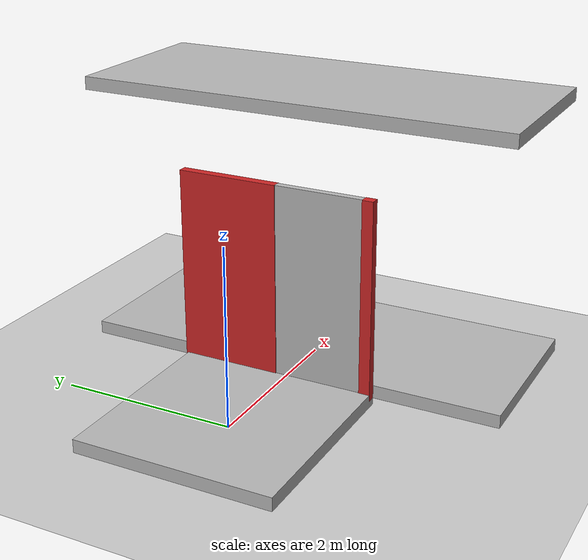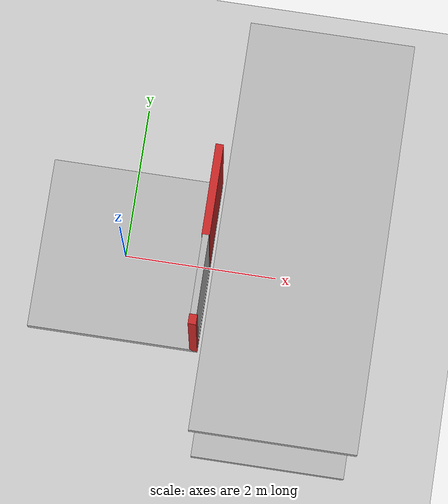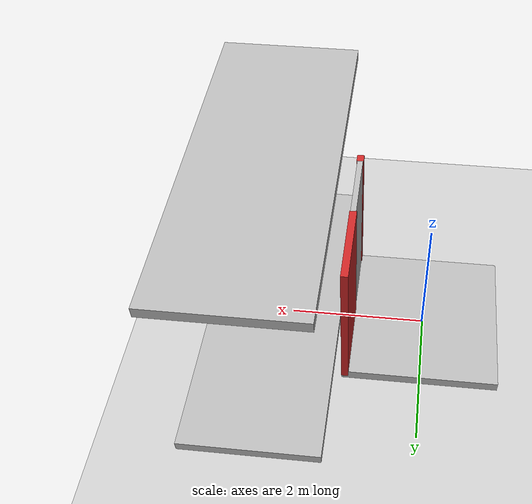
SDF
<?xml version="1.0" ?>
<sdf version="1.5">
  <world name="default">

    <!-- A global light source -->
    <include>
      <uri>model://sun</uri>
    </include>

    <!-- A ground plane -->
    <include>
      <uri>model://ground_plane</uri>
    </include>

    <include>
      <uri>model://example</uri>
    </include>
    <!-- World plugin that publishes event messages.
         The topics used in these messages match up with topics used by the
         plugin in the elevator model below.
    -->
    <plugin filename="libSimEventsPlugin.so" name="elevator_event_plugin">

      <region>
        <name>region1</name>
        <volume>
          <min>1.5 -1 0</min>
          <max>2.5 1 1</max>
        </volume>
      </region>

      <region>
        <name>region2</name>
        <volume>
          <min>1.5 -1 3</min>
          <max>2.5 1 4</max>
        </volume>
      </region>

      <event>
        <name>region1_event</name>
        <type>occupied</type>
        <region>region1</region>
        <topic>/elevator</topic>
        <msg_data>0</msg_data>
      </event>

      <event>
        <name>region2_event</name>
        <type>occupied</type>
        <region>region2</region>
        <topic>/elevator</topic>
        <msg_data>1</msg_data>
      </event>
    </plugin>

    <!-- The elevator car -->
    <model name="elevator">
      <pose>0 0 0.075 0 0 0</pose>
      <link name="link">
        <inertial>
          <mass>800</mass>
        </inertial>

        <collision name="floor_collision">
          <geometry>
            <box>
              <size>2.25 2.25 0.15</size>
            </box>
          </geometry>
        </collision>
        <visual name="floor_visual">
          <geometry>
            <box>
              <size>2.25 2.25 0.15</size>
            </box>
          </geometry>
        </visual>

        <!-- 大墙wall1_collision is the wall to the right of the door, when
             facing the door -->
        <collision name="wall1_collision">
          <pose>1.0745 0.5725 1.125 0 0 0</pose>
          <geometry>
            <box>
              <size>0.1 1.15 2.25</size>
            </box>
          </geometry>
        </collision>
        <visual name="wall1_visual">
          <pose>1.0745 0.5725 1.125 0 0 0</pose>
          <geometry>
            <box>
              <size>0.1 1.15 2.25</size>
            </box>
          </geometry>
          <material>
            <script>
              <name>Gazebo/Red</name>
            </script>
          </material>
        </visual>

        <!-- 小墙 wall2_collision is the wall to the left of the door, when
             facing the door -->
        <collision name="wall2_collision">
          <pose>1.0745 -1.0625 1.125 0 0 0</pose>
          <geometry>
            <box>
              <size>0.1 0.125 2.25</size>
            </box>
          </geometry>
        </collision>
        <visual name="wall2_visual">
          <pose>1.0745 -1.0625 1.125 0 0 0</pose>
          <geometry>
            <box>
              <size>0.1 0.125 2.25</size>
            </box>
          </geometry>
          <material>
            <script>
              <name>Gazebo/Red</name>
            </script>
          </material>
        </visual>
      </link>

      <link name="door">
        <pose>1.0745 -0.5 1.125 0 0 0</pose>
        <collision name="collision">
          <geometry>
            <box>
              <size>0.08 1.0 2.25</size>
            </box>
          </geometry>
        </collision>
        <visual name="visual">
          <geometry>
            <box>
              <size>0.08 1.0 2.25</size>
            </box>
          </geometry>
        </visual>
      </link>

      <joint name="door_joint" type="prismatic">
        <parent>link</parent>
        <child>door</child>
        <axis>
          <xyz>0 1 0</xyz>
          <limit>
            <lower>0</lower>
            <upper>1.5</upper>
            <effort>30</effort>
          </limit>

          <dynamics>
            <damping>2</damping>
          </dynamics>
        </axis>
      </joint>

      <joint name="lift_joint" type="prismatic">
        <parent>world</parent>
        <child>link</child>
        <axis>
          <xyz>0 0 1</xyz>
          <limit>
            <lower>0</lower>
            <upper>10</upper>
            <effort>100000</effort>
          </limit>

          <dynamics>
            <damping>50</damping>
          </dynamics>
        </axis>
        <physics>
          <ode>
            <implicit_spring_damper>1</implicit_spring_damper>
          </ode>
        </physics>
      </joint>

      <!-- Plugin to control the elevator -->
      <plugin filename="libgazebo_ros_elevator.so" name="elevator_plugin">
        <lift_joint>elevator::lift_joint</lift_joint>
        <door_joint>elevator::door_joint</door_joint>
        <floor_height>3.075</floor_height>

        <!-- Time the elevator door will stay open in seconds -->
        <door_wait_time>10</door_wait_time>

        <!-- This topic is used to control the elevator -->
        <topic>/elevator</topic>
      </plugin>
    </model>

    <model name="floor0">
      <pose>2.25 0 0.075 0 0 0</pose>
      <static>true</static>
      <link name="link">
        <collision name="floor_collision">
          <geometry>
            <box>
              <size>2.0 5.0 0.15</size>
            </box>
          </geometry>
        </collision>
        <visual name="floor_visual">
          <geometry>
            <box>
              <size>2.0 5.0 0.15</size>
            </box>
          </geometry>
        </visual>
      </link>
    </model>

    <model name="floor1">
      <pose>2.25 0 3.075 0 0 0</pose>
      <static>true</static>
      <link name="link">
        <collision name="floor_collision">
          <geometry>
            <box>
              <size>2.0 5.0 0.15</size>
            </box>
          </geometry>
        </collision>
        <visual name="floor_visual">
          <geometry>
            <box>
              <size>2.0 5.0 0.15</size>
            </box>
          </geometry>
        </visual>
      </link>
    </model>

  </world>
</sdf>

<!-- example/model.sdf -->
<sdf version="1.6">
    <model name="joint_controller_demo">
      <pose>0 0 0 0 0 0</pose>
      <link name="base_link">
            <pose>0.0 0.0 0.0 0 0 0</pose>
            <inertial>
                <inertia>
                    <ixx>2.501</ixx>
                    <ixy>0</ixy>
                    <ixz>0</ixz>
                    <iyy>2.501</iyy>
                    <iyz>0</iyz>
                    <izz>5</izz>
                </inertia>
                <mass>120.0</mass>
            </inertial>
            <visual name="base_visual">
                <pose>0.0 0.0 0.0 0 0 0</pose>
                <geometry>
                    <box>
                    <size>0.5 0.5 0.01</size>
                    </box>
                </geometry>
            </visual>
            <collision name="base_collision">
                <pose>0.0 0.0 0.0 0 0 0</pose>
                <geometry>
                    <box>
                    <size>0.5 0.5 0.01</size>
                    </box>
                </geometry>
            </collision>
      </link>
      <link name="rotor">
            <pose>0.0 0.0 0.1 0 0 0</pose>
            <inertial>
            <inertia>
                <ixx>0.032</ixx>
                <ixy>0</ixy>
                <ixz>0</ixz>
                <iyy>0.032</iyy>
                <iyz>0</iyz>
                <izz>0.00012</izz>
            </inertia>
            <mass>0.6</mass>
            </inertial>
            <visual name="visual">
            <geometry>
                <box>
                <size>0.25 0.1 0.05</size>
                </box>
            </geometry>
            <material>
                <ambient>0.2 0.8 0.2 1</ambient>
                <diffuse>0.8 0 0 1</diffuse>
            </material>
            </visual>
            <collision name="collision">
            <geometry>
                <box>
                <size>0.25 0.1 0.05</size>
                </box>
            </geometry>
            </collision>
      </link>

      <joint name="world_fixed" type="fixed">
        <parent>world</parent>
        <child>base_link</child>
      </joint>

      <joint name="j1" type="revolute">
        <pose>0 0 -0.5 0 0 0</pose>
        <parent>base_link</parent>
        <child>rotor</child>
        <axis>
          <xyz>0 0 1</xyz>
        </axis>
      </joint>

        <plugin name="init_joint_control" filename="libJointControlPlugin.so">
            <controller type="position">
                <joint>j1</joint>
                <target>1.0</target>
                <pid_gains>5 0.1 0.01</pid_gains>
            </controller>
        </plugin>
    </model>
</sdf>
